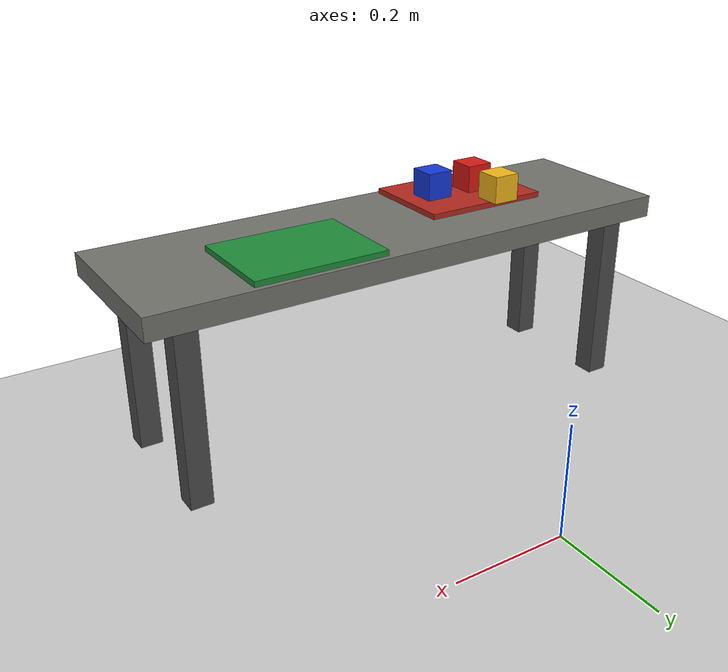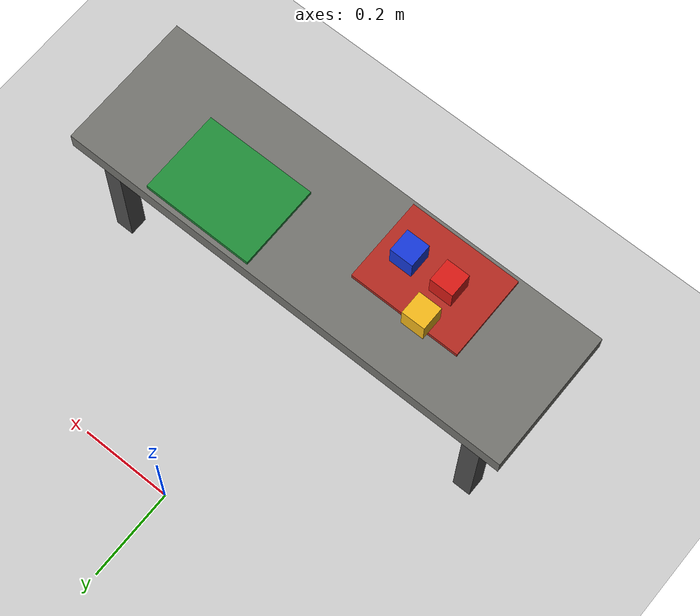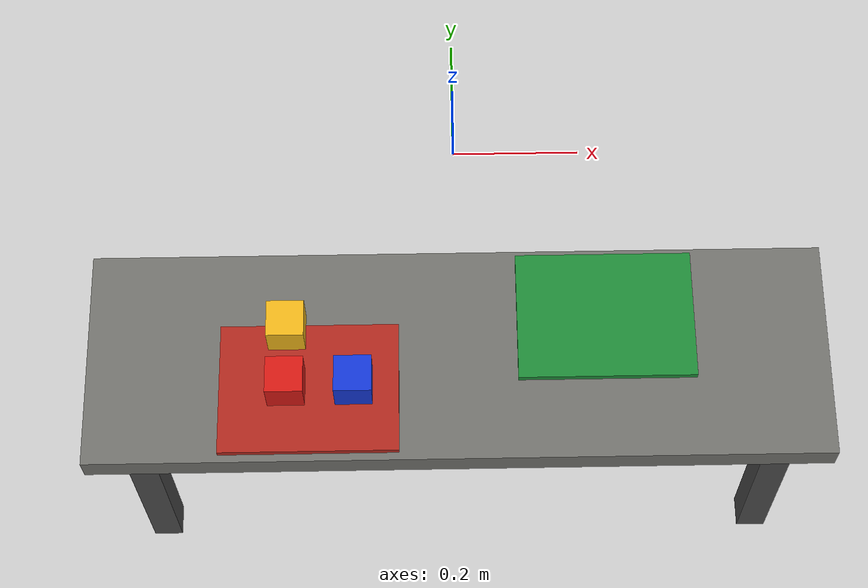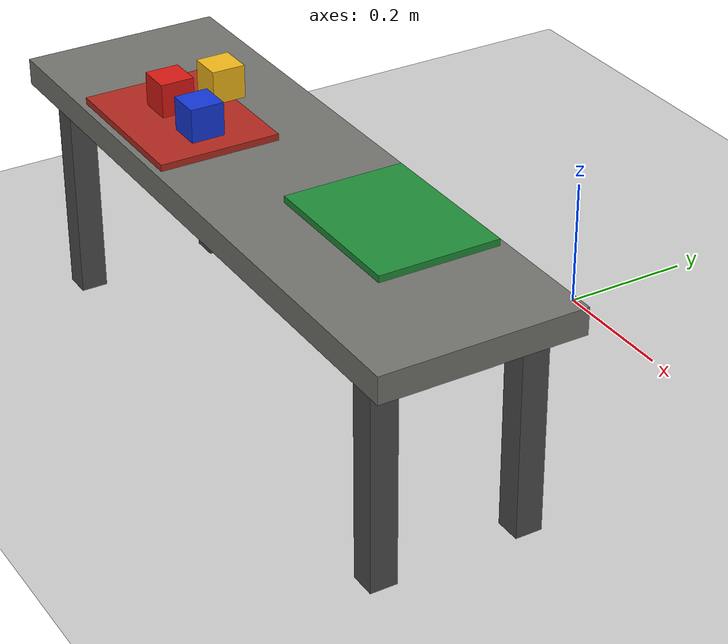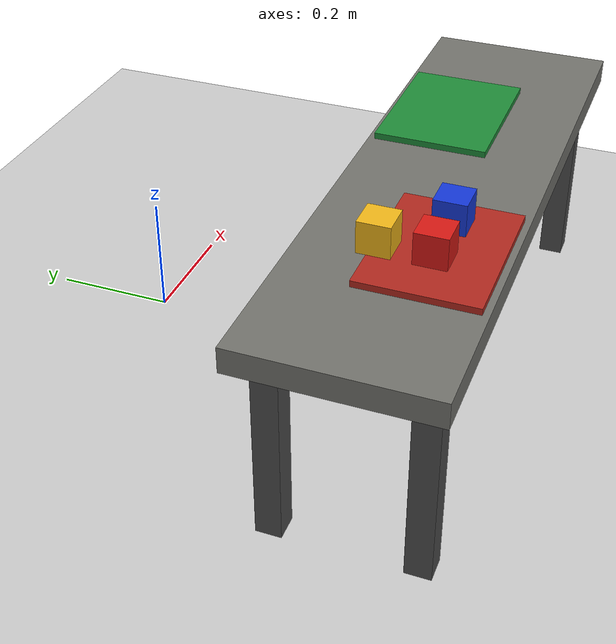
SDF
<?xml version="1.0"?>
<sdf version="1.6">
  <world name="pick_place_world">
    <gravity>0 0 -9.81</gravity>

    <physics name="ode_physics" type="ode">
      <max_step_size>0.001</max_step_size>
      <real_time_update_rate>1000</real_time_update_rate>
      <real_time_factor>1.0</real_time_factor>
      <ode>
        <solver>
          <type>quick</type>
          <iters>80</iters>
          <sor>1.0</sor>
        </solver>
        <constraints>
          <cfm>0.0</cfm>
          <erp>0.2</erp>
          <contact_max_correcting_vel>0.1</contact_max_correcting_vel>
          <contact_surface_layer>0.001</contact_surface_layer>
        </constraints>
      </ode>
    </physics>

    <include>
      <uri>model://sun</uri>
    </include>

    <include>
      <uri>model://ground_plane</uri>
    </include>

    <model name="work_table">
      <static>true</static>
      <pose>0 -0.5 0 0 0 0</pose>
      <link name="table">
        <collision name="top_collision">
          <pose>0 0 0.34 0 0 0</pose>
          <geometry>
            <box>
              <size>1.0 0.30 0.04</size>
            </box>
          </geometry>
          <surface>
            <friction>
              <ode>
                <mu>1.0</mu>
                <mu2>1.0</mu2>
              </ode>
            </friction>
          </surface>
        </collision>
        <visual name="top_visual">
          <pose>0 0 0.34 0 0 0</pose>
          <geometry>
            <box>
              <size>1.0 0.30 0.04</size>
            </box>
          </geometry>
          <material>
            <ambient>0.45 0.45 0.43 1</ambient>
            <diffuse>0.45 0.45 0.43 1</diffuse>
          </material>
        </visual>

        <collision name="front_left_leg_collision">
          <pose>-0.43 -0.11 0.16 0 0 0</pose>
          <geometry>
            <box>
              <size>0.04 0.04 0.32</size>
            </box>
          </geometry>
        </collision>
        <visual name="front_left_leg_visual">
          <pose>-0.43 -0.11 0.16 0 0 0</pose>
          <geometry>
            <box>
              <size>0.04 0.04 0.32</size>
            </box>
          </geometry>
          <material>
            <ambient>0.30 0.30 0.30 1</ambient>
            <diffuse>0.30 0.30 0.30 1</diffuse>
          </material>
        </visual>

        <collision name="front_right_leg_collision">
          <pose>0.43 -0.11 0.16 0 0 0</pose>
          <geometry>
            <box>
              <size>0.04 0.04 0.32</size>
            </box>
          </geometry>
        </collision>
        <visual name="front_right_leg_visual">
          <pose>0.43 -0.11 0.16 0 0 0</pose>
          <geometry>
            <box>
              <size>0.04 0.04 0.32</size>
            </box>
          </geometry>
          <material>
            <ambient>0.30 0.30 0.30 1</ambient>
            <diffuse>0.30 0.30 0.30 1</diffuse>
          </material>
        </visual>

        <collision name="back_left_leg_collision">
          <pose>-0.43 0.11 0.16 0 0 0</pose>
          <geometry>
            <box>
              <size>0.04 0.04 0.32</size>
            </box>
          </geometry>
        </collision>
        <visual name="back_left_leg_visual">
          <pose>-0.43 0.11 0.16 0 0 0</pose>
          <geometry>
            <box>
              <size>0.04 0.04 0.32</size>
            </box>
          </geometry>
          <material>
            <ambient>0.30 0.30 0.30 1</ambient>
            <diffuse>0.30 0.30 0.30 1</diffuse>
          </material>
        </visual>

        <collision name="back_right_leg_collision">
          <pose>0.43 0.11 0.16 0 0 0</pose>
          <geometry>
            <box>
              <size>0.04 0.04 0.32</size>
            </box>
          </geometry>
        </collision>
        <visual name="back_right_leg_visual">
          <pose>0.43 0.11 0.16 0 0 0</pose>
          <geometry>
            <box>
              <size>0.04 0.04 0.32</size>
            </box>
          </geometry>
          <material>
            <ambient>0.30 0.30 0.30 1</ambient>
            <diffuse>0.30 0.30 0.30 1</diffuse>
          </material>
        </visual>
      </link>
    </model>

    <model name="pickup_zone">
      <static>true</static>
      <pose>-0.20 -0.55 0.365 0 0 0</pose>
      <link name="pad">
        <collision name="collision">
          <geometry>
            <box>
              <size>0.24 0.18 0.01</size>
            </box>
          </geometry>
        </collision>
        <visual name="visual">
          <geometry>
            <box>
              <size>0.24 0.18 0.01</size>
            </box>
          </geometry>
          <material>
            <ambient>0.70 0.16 0.12 1</ambient>
            <diffuse>0.70 0.16 0.12 1</diffuse>
          </material>
        </visual>
      </link>
    </model>

    <model name="place_zone">
      <static>true</static>
      <pose>0.20 -0.45 0.365 0 0 0</pose>
      <link name="pad">
        <collision name="collision">
          <geometry>
            <box>
              <size>0.24 0.18 0.01</size>
            </box>
          </geometry>
        </collision>
        <visual name="visual">
          <geometry>
            <box>
              <size>0.24 0.18 0.01</size>
            </box>
          </geometry>
          <material>
            <ambient>0.12 0.55 0.22 1</ambient>
            <diffuse>0.12 0.55 0.22 1</diffuse>
          </material>
        </visual>
      </link>
    </model>

    <model name="pickup_block_red">
      <pose>-0.23 -0.55 0.395 0 0 0</pose>
      <link name="block">
        <inertial>
          <mass>0.05</mass>
          <inertia>
            <ixx>1.67e-5</ixx>
            <ixy>0</ixy>
            <ixz>0</ixz>
            <iyy>1.67e-5</iyy>
            <iyz>0</iyz>
            <izz>1.67e-5</izz>
          </inertia>
        </inertial>
        <collision name="collision">
          <geometry>
            <box>
              <size>0.05 0.05 0.05</size>
            </box>
          </geometry>
          <surface>
            <friction>
              <ode>
                <mu>1.2</mu>
                <mu2>1.2</mu2>
              </ode>
            </friction>
          </surface>
        </collision>
        <visual name="visual">
          <geometry>
            <box>
              <size>0.05 0.05 0.05</size>
            </box>
          </geometry>
          <material>
            <ambient>0.85 0.10 0.08 1</ambient>
            <diffuse>0.85 0.10 0.08 1</diffuse>
          </material>
        </visual>
      </link>
    </model>

    <model name="pickup_block_blue">
      <pose>-0.14 -0.55 0.395 0 0 0</pose>
      <link name="block">
        <inertial>
          <mass>0.05</mass>
          <inertia>
            <ixx>1.67e-5</ixx>
            <ixy>0</ixy>
            <ixz>0</ixz>
            <iyy>1.67e-5</iyy>
            <iyz>0</iyz>
            <izz>1.67e-5</izz>
          </inertia>
        </inertial>
        <collision name="collision">
          <geometry>
            <box>
              <size>0.05 0.05 0.05</size>
            </box>
          </geometry>
          <surface>
            <friction>
              <ode>
                <mu>1.2</mu>
                <mu2>1.2</mu2>
              </ode>
            </friction>
          </surface>
        </collision>
        <visual name="visual">
          <geometry>
            <box>
              <size>0.05 0.05 0.05</size>
            </box>
          </geometry>
          <material>
            <ambient>0.08 0.22 0.85 1</ambient>
            <diffuse>0.08 0.22 0.85 1</diffuse>
          </material>
        </visual>
      </link>
    </model>

    <model name="pickup_block_yellow">
      <pose>-0.23 -0.47 0.395 0 0 0</pose>
      <link name="block">
        <inertial>
          <mass>0.05</mass>
          <inertia>
            <ixx>1.67e-5</ixx>
            <ixy>0</ixy>
            <ixz>0</ixz>
            <iyy>1.67e-5</iyy>
            <iyz>0</iyz>
            <izz>1.67e-5</izz>
          </inertia>
        </inertial>
        <collision name="collision">
          <geometry>
            <box>
              <size>0.05 0.05 0.05</size>
            </box>
          </geometry>
          <surface>
            <friction>
              <ode>
                <mu>1.2</mu>
                <mu2>1.2</mu2>
              </ode>
            </friction>
          </surface>
        </collision>
        <visual name="visual">
          <geometry>
            <box>
              <size>0.05 0.05 0.05</size>
            </box>
          </geometry>
          <material>
            <ambient>0.95 0.72 0.10 1</ambient>
            <diffuse>0.95 0.72 0.10 1</diffuse>
          </material>
        </visual>
      </link>
    </model>
  </world>
</sdf>
